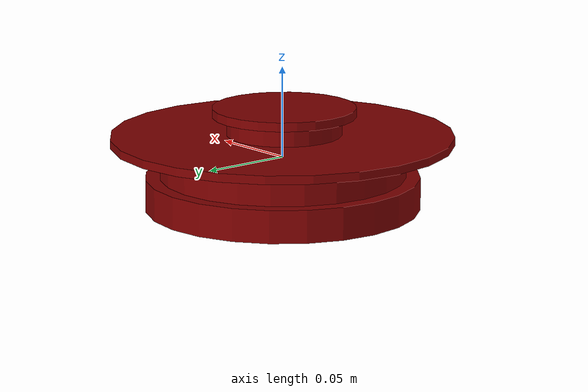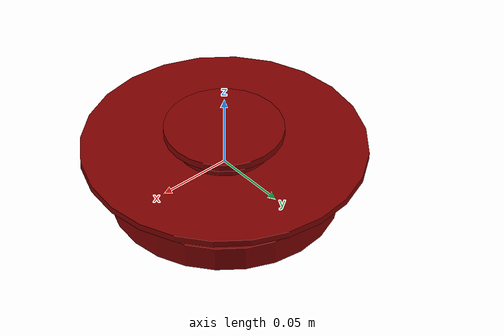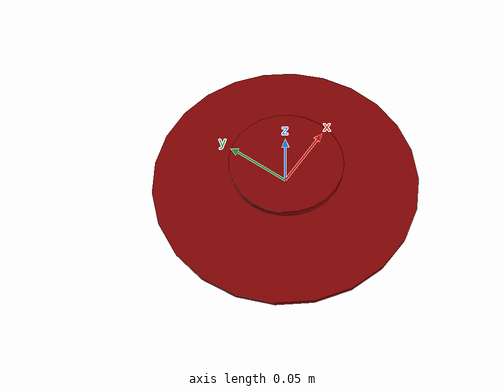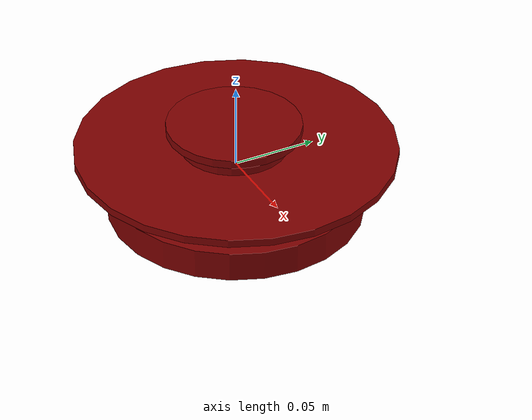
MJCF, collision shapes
<?xml version='1.0' encoding='UTF-8'?>
<mujoco model="model">
  <option timestep="0.002" gravity="0.0 0.0 -9.81"/>
  <compiler angle="radian"/>
  <asset>
    <mesh file="visuals/lid.obj" name="lid_vis"/>
    <texture file="visuals/T_lid_BC001.png" name="lid_material" type="2d"/>
    <material name="lid_material" rgba="1 1 1 1.0" texture="lid_material" shininess="0.4472135901451111" specular="0.3103448502657381"/>
  </asset>
  <default>
    <default class="visual">
      <geom conaffinity="0" contype="0" group="1" type="mesh"/>
    </default>
    <default class="collision">
      <geom group="0" rgba="0.5 0 0 0.5" density="1000" solref="0.01 1.8" solimp="0.8 0.94 0.02" condim="3"/>
    </default>
    <default class="spawn">
      <geom group="0" rgba="1 1 1 0.5" contype="0" conaffinity="0"/>
      <site group="0" rgba="1 1 1 0.5"/>
    </default>
    <default class="region">
      <geom group="1" conaffinity="0" contype="0" rgba="0 1 0 0" mass="0"/>
    </default>
  </default>
  <worldbody>
    <body>
      <body name="object">
        <geom mesh="lid_vis" type="mesh" solimp="0.998 0.998 0.001" solref="0.001 1" friction="0.95 0.3 0.1" class="visual" material="lid_material"/>
        <geom type="cylinder" pos="7.450580596923828e-09 -4.656612873077393e-10 0.01053135097026825" size="0.0935 0.0022872029803693295" quat="1.0 0.0 0.0 0.0" class="collision"/>
        <geom type="cylinder" pos="-0.0005689114332199097 -0.0008940151892602444 0.018359676003456116" size="0.03140345588326454 0.006720168516039848" quat="1.0 0.0 0.0 0.0" class="collision"/>
        <geom type="cylinder" name="handle_main" pos="-0.0005689114332199097 -0.0008940151892602444 0.025396645069122314" size="0.03924999758601189 0.00243094889447093" quat="1.0 0.0 0.0 0.0" class="collision"/>
        <geom type="cylinder" pos="-0.0002344828099012375 -5.794409662485123e-05 -0.0017060339450836182" size="0.06710698455572128 0.01436053030192852" quat="1.0 0.0 0.0 0.0" class="collision"/>
        <geom type="cylinder" pos="-0.0002344828099012375 -5.794409662485123e-05 -0.01896686851978302" size="0.075 0.008860650472342968" quat="1.0 0.0 0.0 0.0" class="collision"/>
        <geom class="region" name="reg_main" type="box" pos="-1.862645149230957e-09 0.0 0.0" size="0.09283694422245026 0.09351146018505097 0.028827590703964234"/>
      </body>
    </body>
  </worldbody>
  <actuator/>
</mujoco>
